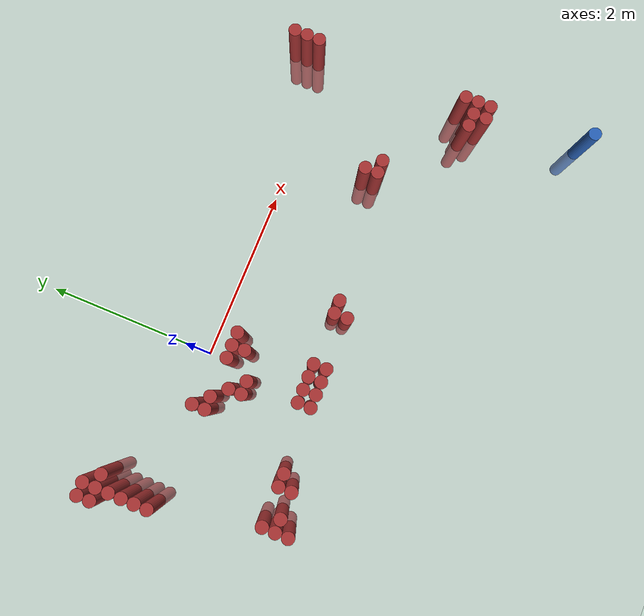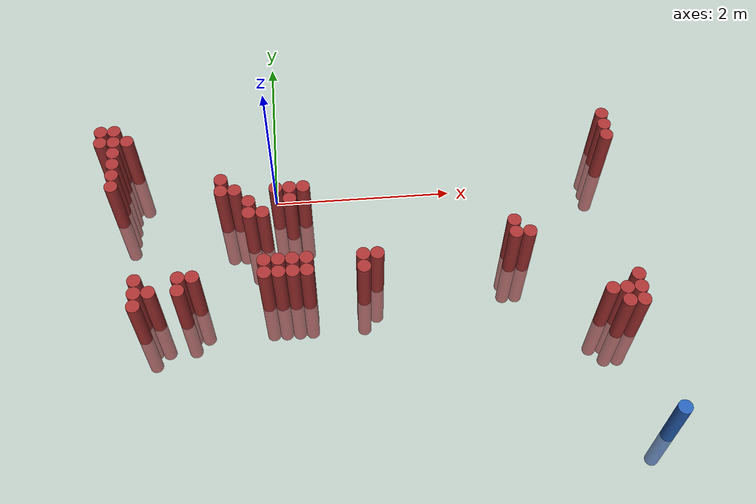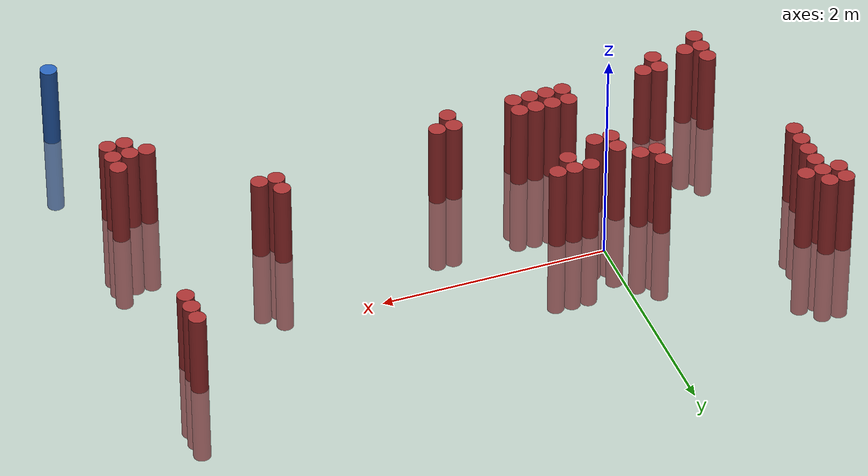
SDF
<sdf version="1.6">
 <world name="default">
  <model name="ground_plane">
   <static>1</static>
   <link name="link">
    <collision name="collision">
     <geometry><plane><normal>0 0 1</normal><size>100 100</size></plane></geometry>
     <surface><friction><ode><mu>100</mu><mu2>50</mu2></ode></friction></surface>
    </collision>
    <visual name="visual">
     <cast_shadows>0</cast_shadows>
     <geometry><plane><normal>0 0 1</normal><size>100 100</size></plane></geometry>
     <material>
      <script><uri>file://media/materials/scripts/gazebo.material</uri><name>Gazebo/Grey</name></script>
     </material>
    </visual>
   </link>
  </model>
  <model name="unit_cylinder_72">
   <static>1</static>
   <pose>3.925000 -3.125000 0.000000 0.000000 0.000000 0.000000</pose>
   <link name="link">
    <inertial>
     <mass>1</mass>
     <inertia><ixx>0.145833</ixx><ixy>0</ixy><ixz>0</ixz><iyy>0.145833</iyy><iyz>0</iyz><izz>0.125</izz></inertia>
    </inertial>
    <collision name="collision">
     <geometry><cylinder><radius>0.075000</radius><length>1.5</length></cylinder></geometry>
    </collision>
    <visual name="visual">
     <geometry><cylinder><radius>0.075000</radius><length>1.5</length></cylinder></geometry>
     <material>
      <ambient>0.152000 0.379000 0.720000 1</ambient>
      <diffuse>0.152000 0.379000 0.720000 1</diffuse>
     </material>
     <material>
      <script><name>Gazebo/Grey</name><uri>file://media/materials/scripts/gazebo.material</uri></script>
     </material>
    </visual>
   </link>
  </model>
  <model name="unit_cylinder_318">
   <static>1</static>
   <pose>-1.925000 0.475000 0.000000 0.000000 0.000000 0.000000</pose>
   <link name="link">
    <inertial>
     <mass>1</mass>
     <inertia><ixx>0.145833</ixx><ixy>0</ixy><ixz>0</ixz><iyy>0.145833</iyy><iyz>0</iyz><izz>0.125</izz></inertia>
    </inertial>
    <collision name="collision">
     <geometry><cylinder><radius>0.075000</radius><length>1.5</length></cylinder></geometry>
    </collision>
    <visual name="visual">
     <geometry><cylinder><radius>0.075000</radius><length>1.5</length></cylinder></geometry>
     <material>
      <ambient>0.648000 0.192000 0.192000 1</ambient>
      <diffuse>0.648000 0.192000 0.192000 1</diffuse>
     </material>
     <material>
      <script><name>Gazebo/Grey</name><uri>file://media/materials/scripts/gazebo.material</uri></script>
     </material>
    </visual>
   </link>
  </model>
  <model name="unit_cylinder_319">
   <static>1</static>
   <pose>-1.925000 0.625000 0.000000 0.000000 0.000000 0.000000</pose>
   <link name="link">
    <inertial>
     <mass>1</mass>
     <inertia><ixx>0.145833</ixx><ixy>0</ixy><ixz>0</ixz><iyy>0.145833</iyy><iyz>0</iyz><izz>0.125</izz></inertia>
    </inertial>
    <collision name="collision">
     <geometry><cylinder><radius>0.075000</radius><length>1.5</length></cylinder></geometry>
    </collision>
    <visual name="visual">
     <geometry><cylinder><radius>0.075000</radius><length>1.5</length></cylinder></geometry>
     <material>
      <ambient>0.648000 0.192000 0.192000 1</ambient>
      <diffuse>0.648000 0.192000 0.192000 1</diffuse>
     </material>
     <material>
      <script><name>Gazebo/Grey</name><uri>file://media/materials/scripts/gazebo.material</uri></script>
     </material>
    </visual>
   </link>
  </model>
  <model name="unit_cylinder_328">
   <static>1</static>
   <pose>-1.775000 -0.125000 0.000000 0.000000 0.000000 0.000000</pose>
   <link name="link">
    <inertial>
     <mass>1</mass>
     <inertia><ixx>0.145833</ixx><ixy>0</ixy><ixz>0</ixz><iyy>0.145833</iyy><iyz>0</iyz><izz>0.125</izz></inertia>
    </inertial>
    <collision name="collision">
     <geometry><cylinder><radius>0.075000</radius><length>1.5</length></cylinder></geometry>
    </collision>
    <visual name="visual">
     <geometry><cylinder><radius>0.075000</radius><length>1.5</length></cylinder></geometry>
     <material>
      <ambient>0.648000 0.192000 0.192000 1</ambient>
      <diffuse>0.648000 0.192000 0.192000 1</diffuse>
     </material>
     <material>
      <script><name>Gazebo/Grey</name><uri>file://media/materials/scripts/gazebo.material</uri></script>
     </material>
    </visual>
   </link>
  </model>
  <model name="unit_cylinder_329">
   <static>1</static>
   <pose>-1.775000 0.025000 0.000000 0.000000 0.000000 0.000000</pose>
   <link name="link">
    <inertial>
     <mass>1</mass>
     <inertia><ixx>0.145833</ixx><ixy>0</ixy><ixz>0</ixz><iyy>0.145833</iyy><iyz>0</iyz><izz>0.125</izz></inertia>
    </inertial>
    <collision name="collision">
     <geometry><cylinder><radius>0.075000</radius><length>1.5</length></cylinder></geometry>
    </collision>
    <visual name="visual">
     <geometry><cylinder><radius>0.075000</radius><length>1.5</length></cylinder></geometry>
     <material>
      <ambient>0.648000 0.192000 0.192000 1</ambient>
      <diffuse>0.648000 0.192000 0.192000 1</diffuse>
     </material>
     <material>
      <script><name>Gazebo/Grey</name><uri>file://media/materials/scripts/gazebo.material</uri></script>
     </material>
    </visual>
   </link>
  </model>
  <model name="unit_cylinder_330">
   <static>1</static>
   <pose>-1.775000 0.175000 0.000000 0.000000 0.000000 0.000000</pose>
   <link name="link">
    <inertial>
     <mass>1</mass>
     <inertia><ixx>0.145833</ixx><ixy>0</ixy><ixz>0</ixz><iyy>0.145833</iyy><iyz>0</iyz><izz>0.125</izz></inertia>
    </inertial>
    <collision name="collision">
     <geometry><cylinder><radius>0.075000</radius><length>1.5</length></cylinder></geometry>
    </collision>
    <visual name="visual">
     <geometry><cylinder><radius>0.075000</radius><length>1.5</length></cylinder></geometry>
     <material>
      <ambient>0.648000 0.192000 0.192000 1</ambient>
      <diffuse>0.648000 0.192000 0.192000 1</diffuse>
     </material>
     <material>
      <script><name>Gazebo/Grey</name><uri>file://media/materials/scripts/gazebo.material</uri></script>
     </material>
    </visual>
   </link>
  </model>
  <model name="unit_cylinder_331">
   <static>1</static>
   <pose>-1.775000 0.325000 0.000000 0.000000 0.000000 0.000000</pose>
   <link name="link">
    <inertial>
     <mass>1</mass>
     <inertia><ixx>0.145833</ixx><ixy>0</ixy><ixz>0</ixz><iyy>0.145833</iyy><iyz>0</iyz><izz>0.125</izz></inertia>
    </inertial>
    <collision name="collision">
     <geometry><cylinder><radius>0.075000</radius><length>1.5</length></cylinder></geometry>
    </collision>
    <visual name="visual">
     <geometry><cylinder><radius>0.075000</radius><length>1.5</length></cylinder></geometry>
     <material>
      <ambient>0.648000 0.192000 0.192000 1</ambient>
      <diffuse>0.648000 0.192000 0.192000 1</diffuse>
     </material>
     <material>
      <script><name>Gazebo/Grey</name><uri>file://media/materials/scripts/gazebo.material</uri></script>
     </material>
    </visual>
   </link>
  </model>
  <model name="unit_cylinder_332">
   <static>1</static>
   <pose>-1.775000 0.475000 0.000000 0.000000 0.000000 0.000000</pose>
   <link name="link">
    <inertial>
     <mass>1</mass>
     <inertia><ixx>0.145833</ixx><ixy>0</ixy><ixz>0</ixz><iyy>0.145833</iyy><iyz>0</iyz><izz>0.125</izz></inertia>
    </inertial>
    <collision name="collision">
     <geometry><cylinder><radius>0.075000</radius><length>1.5</length></cylinder></geometry>
    </collision>
    <visual name="visual">
     <geometry><cylinder><radius>0.075000</radius><length>1.5</length></cylinder></geometry>
     <material>
      <ambient>0.648000 0.192000 0.192000 1</ambient>
      <diffuse>0.648000 0.192000 0.192000 1</diffuse>
     </material>
     <material>
      <script><name>Gazebo/Grey</name><uri>file://media/materials/scripts/gazebo.material</uri></script>
     </material>
    </visual>
   </link>
  </model>
  <model name="unit_cylinder_333">
   <static>1</static>
   <pose>-1.775000 0.625000 0.000000 0.000000 0.000000 0.000000</pose>
   <link name="link">
    <inertial>
     <mass>1</mass>
     <inertia><ixx>0.145833</ixx><ixy>0</ixy><ixz>0</ixz><iyy>0.145833</iyy><iyz>0</iyz><izz>0.125</izz></inertia>
    </inertial>
    <collision name="collision">
     <geometry><cylinder><radius>0.075000</radius><length>1.5</length></cylinder></geometry>
    </collision>
    <visual name="visual">
     <geometry><cylinder><radius>0.075000</radius><length>1.5</length></cylinder></geometry>
     <material>
      <ambient>0.648000 0.192000 0.192000 1</ambient>
      <diffuse>0.648000 0.192000 0.192000 1</diffuse>
     </material>
     <material>
      <script><name>Gazebo/Grey</name><uri>file://media/materials/scripts/gazebo.material</uri></script>
     </material>
    </visual>
   </link>
  </model>
  <model name="unit_cylinder_340">
   <static>1</static>
   <pose>-1.625000 0.475000 0.000000 0.000000 0.000000 0.000000</pose>
   <link name="link">
    <inertial>
     <mass>1</mass>
     <inertia><ixx>0.145833</ixx><ixy>0</ixy><ixz>0</ixz><iyy>0.145833</iyy><iyz>0</iyz><izz>0.125</izz></inertia>
    </inertial>
    <collision name="collision">
     <geometry><cylinder><radius>0.075000</radius><length>1.5</length></cylinder></geometry>
    </collision>
    <visual name="visual">
     <geometry><cylinder><radius>0.075000</radius><length>1.5</length></cylinder></geometry>
     <material>
      <ambient>0.648000 0.192000 0.192000 1</ambient>
      <diffuse>0.648000 0.192000 0.192000 1</diffuse>
     </material>
     <material>
      <script><name>Gazebo/Grey</name><uri>file://media/materials/scripts/gazebo.material</uri></script>
     </material>
    </visual>
   </link>
  </model>
  <model name="unit_cylinder_346">
   <static>1</static>
   <pose>-1.475000 -1.625000 0.000000 0.000000 0.000000 0.000000</pose>
   <link name="link">
    <inertial>
     <mass>1</mass>
     <inertia><ixx>0.145833</ixx><ixy>0</ixy><ixz>0</ixz><iyy>0.145833</iyy><iyz>0</iyz><izz>0.125</izz></inertia>
    </inertial>
    <collision name="collision">
     <geometry><cylinder><radius>0.075000</radius><length>1.5</length></cylinder></geometry>
    </collision>
    <visual name="visual">
     <geometry><cylinder><radius>0.075000</radius><length>1.5</length></cylinder></geometry>
     <material>
      <ambient>0.648000 0.192000 0.192000 1</ambient>
      <diffuse>0.648000 0.192000 0.192000 1</diffuse>
     </material>
     <material>
      <script><name>Gazebo/Grey</name><uri>file://media/materials/scripts/gazebo.material</uri></script>
     </material>
    </visual>
   </link>
  </model>
  <model name="unit_cylinder_347">
   <static>1</static>
   <pose>-1.475000 -1.475000 0.000000 0.000000 0.000000 0.000000</pose>
   <link name="link">
    <inertial>
     <mass>1</mass>
     <inertia><ixx>0.145833</ixx><ixy>0</ixy><ixz>0</ixz><iyy>0.145833</iyy><iyz>0</iyz><izz>0.125</izz></inertia>
    </inertial>
    <collision name="collision">
     <geometry><cylinder><radius>0.075000</radius><length>1.5</length></cylinder></geometry>
    </collision>
    <visual name="visual">
     <geometry><cylinder><radius>0.075000</radius><length>1.5</length></cylinder></geometry>
     <material>
      <ambient>0.648000 0.192000 0.192000 1</ambient>
      <diffuse>0.648000 0.192000 0.192000 1</diffuse>
     </material>
     <material>
      <script><name>Gazebo/Grey</name><uri>file://media/materials/scripts/gazebo.material</uri></script>
     </material>
    </visual>
   </link>
  </model>
  <model name="unit_cylinder_348">
   <static>1</static>
   <pose>-1.475000 -1.325000 0.000000 0.000000 0.000000 0.000000</pose>
   <link name="link">
    <inertial>
     <mass>1</mass>
     <inertia><ixx>0.145833</ixx><ixy>0</ixy><ixz>0</ixz><iyy>0.145833</iyy><iyz>0</iyz><izz>0.125</izz></inertia>
    </inertial>
    <collision name="collision">
     <geometry><cylinder><radius>0.075000</radius><length>1.5</length></cylinder></geometry>
    </collision>
    <visual name="visual">
     <geometry><cylinder><radius>0.075000</radius><length>1.5</length></cylinder></geometry>
     <material>
      <ambient>0.648000 0.192000 0.192000 1</ambient>
      <diffuse>0.648000 0.192000 0.192000 1</diffuse>
     </material>
     <material>
      <script><name>Gazebo/Grey</name><uri>file://media/materials/scripts/gazebo.material</uri></script>
     </material>
    </visual>
   </link>
  </model>
  <model name="unit_cylinder_354">
   <static>1</static>
   <pose>-1.325000 -1.475000 0.000000 0.000000 0.000000 0.000000</pose>
   <link name="link">
    <inertial>
     <mass>1</mass>
     <inertia><ixx>0.145833</ixx><ixy>0</ixy><ixz>0</ixz><iyy>0.145833</iyy><iyz>0</iyz><izz>0.125</izz></inertia>
    </inertial>
    <collision name="collision">
     <geometry><cylinder><radius>0.075000</radius><length>1.5</length></cylinder></geometry>
    </collision>
    <visual name="visual">
     <geometry><cylinder><radius>0.075000</radius><length>1.5</length></cylinder></geometry>
     <material>
      <ambient>0.648000 0.192000 0.192000 1</ambient>
      <diffuse>0.648000 0.192000 0.192000 1</diffuse>
     </material>
     <material>
      <script><name>Gazebo/Grey</name><uri>file://media/materials/scripts/gazebo.material</uri></script>
     </material>
    </visual>
   </link>
  </model>
  <model name="unit_cylinder_358">
   <static>1</static>
   <pose>-1.025000 -1.475000 0.000000 0.000000 0.000000 0.000000</pose>
   <link name="link">
    <inertial>
     <mass>1</mass>
     <inertia><ixx>0.145833</ixx><ixy>0</ixy><ixz>0</ixz><iyy>0.145833</iyy><iyz>0</iyz><izz>0.125</izz></inertia>
    </inertial>
    <collision name="collision">
     <geometry><cylinder><radius>0.075000</radius><length>1.5</length></cylinder></geometry>
    </collision>
    <visual name="visual">
     <geometry><cylinder><radius>0.075000</radius><length>1.5</length></cylinder></geometry>
     <material>
      <ambient>0.648000 0.192000 0.192000 1</ambient>
      <diffuse>0.648000 0.192000 0.192000 1</diffuse>
     </material>
     <material>
      <script><name>Gazebo/Grey</name><uri>file://media/materials/scripts/gazebo.material</uri></script>
     </material>
    </visual>
   </link>
  </model>
  <model name="unit_cylinder_359">
   <static>1</static>
   <pose>-1.025000 -1.325000 0.000000 0.000000 0.000000 0.000000</pose>
   <link name="link">
    <inertial>
     <mass>1</mass>
     <inertia><ixx>0.145833</ixx><ixy>0</ixy><ixz>0</ixz><iyy>0.145833</iyy><iyz>0</iyz><izz>0.125</izz></inertia>
    </inertial>
    <collision name="collision">
     <geometry><cylinder><radius>0.075000</radius><length>1.5</length></cylinder></geometry>
    </collision>
    <visual name="visual">
     <geometry><cylinder><radius>0.075000</radius><length>1.5</length></cylinder></geometry>
     <material>
      <ambient>0.648000 0.192000 0.192000 1</ambient>
      <diffuse>0.648000 0.192000 0.192000 1</diffuse>
     </material>
     <material>
      <script><name>Gazebo/Grey</name><uri>file://media/materials/scripts/gazebo.material</uri></script>
     </material>
    </visual>
   </link>
  </model>
  <model name="unit_cylinder_360">
   <static>1</static>
   <pose>-0.875000 -1.325000 0.000000 0.000000 0.000000 0.000000</pose>
   <link name="link">
    <inertial>
     <mass>1</mass>
     <inertia><ixx>0.145833</ixx><ixy>0</ixy><ixz>0</ixz><iyy>0.145833</iyy><iyz>0</iyz><izz>0.125</izz></inertia>
    </inertial>
    <collision name="collision">
     <geometry><cylinder><radius>0.075000</radius><length>1.5</length></cylinder></geometry>
    </collision>
    <visual name="visual">
     <geometry><cylinder><radius>0.075000</radius><length>1.5</length></cylinder></geometry>
     <material>
      <ambient>0.648000 0.192000 0.192000 1</ambient>
      <diffuse>0.648000 0.192000 0.192000 1</diffuse>
     </material>
     <material>
      <script><name>Gazebo/Grey</name><uri>file://media/materials/scripts/gazebo.material</uri></script>
     </material>
    </visual>
   </link>
  </model>
  <model name="unit_cylinder_361">
   <static>1</static>
   <pose>-0.575000 -0.275000 0.000000 0.000000 0.000000 0.000000</pose>
   <link name="link">
    <inertial>
     <mass>1</mass>
     <inertia><ixx>0.145833</ixx><ixy>0</ixy><ixz>0</ixz><iyy>0.145833</iyy><iyz>0</iyz><izz>0.125</izz></inertia>
    </inertial>
    <collision name="collision">
     <geometry><cylinder><radius>0.075000</radius><length>1.5</length></cylinder></geometry>
    </collision>
    <visual name="visual">
     <geometry><cylinder><radius>0.075000</radius><length>1.5</length></cylinder></geometry>
     <material>
      <ambient>0.648000 0.192000 0.192000 1</ambient>
      <diffuse>0.648000 0.192000 0.192000 1</diffuse>
     </material>
     <material>
      <script><name>Gazebo/Grey</name><uri>file://media/materials/scripts/gazebo.material</uri></script>
     </material>
    </visual>
   </link>
  </model>
  <model name="unit_cylinder_362">
   <static>1</static>
   <pose>-0.575000 -0.125000 0.000000 0.000000 0.000000 0.000000</pose>
   <link name="link">
    <inertial>
     <mass>1</mass>
     <inertia><ixx>0.145833</ixx><ixy>0</ixy><ixz>0</ixz><iyy>0.145833</iyy><iyz>0</iyz><izz>0.125</izz></inertia>
    </inertial>
    <collision name="collision">
     <geometry><cylinder><radius>0.075000</radius><length>1.5</length></cylinder></geometry>
    </collision>
    <visual name="visual">
     <geometry><cylinder><radius>0.075000</radius><length>1.5</length></cylinder></geometry>
     <material>
      <ambient>0.648000 0.192000 0.192000 1</ambient>
      <diffuse>0.648000 0.192000 0.192000 1</diffuse>
     </material>
     <material>
      <script><name>Gazebo/Grey</name><uri>file://media/materials/scripts/gazebo.material</uri></script>
     </material>
    </visual>
   </link>
  </model>
  <model name="unit_cylinder_363">
   <static>1</static>
   <pose>-0.425000 -0.275000 0.000000 0.000000 0.000000 0.000000</pose>
   <link name="link">
    <inertial>
     <mass>1</mass>
     <inertia><ixx>0.145833</ixx><ixy>0</ixy><ixz>0</ixz><iyy>0.145833</iyy><iyz>0</iyz><izz>0.125</izz></inertia>
    </inertial>
    <collision name="collision">
     <geometry><cylinder><radius>0.075000</radius><length>1.5</length></cylinder></geometry>
    </collision>
    <visual name="visual">
     <geometry><cylinder><radius>0.075000</radius><length>1.5</length></cylinder></geometry>
     <material>
      <ambient>0.648000 0.192000 0.192000 1</ambient>
      <diffuse>0.648000 0.192000 0.192000 1</diffuse>
     </material>
     <material>
      <script><name>Gazebo/Grey</name><uri>file://media/materials/scripts/gazebo.material</uri></script>
     </material>
    </visual>
   </link>
  </model>
  <model name="unit_cylinder_364">
   <static>1</static>
   <pose>-0.275000 -0.575000 0.000000 0.000000 0.000000 0.000000</pose>
   <link name="link">
    <inertial>
     <mass>1</mass>
     <inertia><ixx>0.145833</ixx><ixy>0</ixy><ixz>0</ixz><iyy>0.145833</iyy><iyz>0</iyz><izz>0.125</izz></inertia>
    </inertial>
    <collision name="collision">
     <geometry><cylinder><radius>0.075000</radius><length>1.5</length></cylinder></geometry>
    </collision>
    <visual name="visual">
     <geometry><cylinder><radius>0.075000</radius><length>1.5</length></cylinder></geometry>
     <material>
      <ambient>0.648000 0.192000 0.192000 1</ambient>
      <diffuse>0.648000 0.192000 0.192000 1</diffuse>
     </material>
     <material>
      <script><name>Gazebo/Grey</name><uri>file://media/materials/scripts/gazebo.material</uri></script>
     </material>
    </visual>
   </link>
  </model>
  <model name="unit_cylinder_365">
   <static>1</static>
   <pose>-0.275000 -0.425000 0.000000 0.000000 0.000000 0.000000</pose>
   <link name="link">
    <inertial>
     <mass>1</mass>
     <inertia><ixx>0.145833</ixx><ixy>0</ixy><ixz>0</ixz><iyy>0.145833</iyy><iyz>0</iyz><izz>0.125</izz></inertia>
    </inertial>
    <collision name="collision">
     <geometry><cylinder><radius>0.075000</radius><length>1.5</length></cylinder></geometry>
    </collision>
    <visual name="visual">
     <geometry><cylinder><radius>0.075000</radius><length>1.5</length></cylinder></geometry>
     <material>
      <ambient>0.648000 0.192000 0.192000 1</ambient>
      <diffuse>0.648000 0.192000 0.192000 1</diffuse>
     </material>
     <material>
      <script><name>Gazebo/Grey</name><uri>file://media/materials/scripts/gazebo.material</uri></script>
     </material>
    </visual>
   </link>
  </model>
  <model name="unit_cylinder_367">
   <static>1</static>
   <pose>-0.125000 -1.325000 0.000000 0.000000 0.000000 0.000000</pose>
   <link name="link">
    <inertial>
     <mass>1</mass>
     <inertia><ixx>0.145833</ixx><ixy>0</ixy><ixz>0</ixz><iyy>0.145833</iyy><iyz>0</iyz><izz>0.125</izz></inertia>
    </inertial>
    <collision name="collision">
     <geometry><cylinder><radius>0.075000</radius><length>1.5</length></cylinder></geometry>
    </collision>
    <visual name="visual">
     <geometry><cylinder><radius>0.075000</radius><length>1.5</length></cylinder></geometry>
     <material>
      <ambient>0.648000 0.192000 0.192000 1</ambient>
      <diffuse>0.648000 0.192000 0.192000 1</diffuse>
     </material>
     <material>
      <script><name>Gazebo/Grey</name><uri>file://media/materials/scripts/gazebo.material</uri></script>
     </material>
    </visual>
   </link>
  </model>
  <model name="unit_cylinder_368">
   <static>1</static>
   <pose>-0.125000 -1.175000 0.000000 0.000000 0.000000 0.000000</pose>
   <link name="link">
    <inertial>
     <mass>1</mass>
     <inertia><ixx>0.145833</ixx><ixy>0</ixy><ixz>0</ixz><iyy>0.145833</iyy><iyz>0</iyz><izz>0.125</izz></inertia>
    </inertial>
    <collision name="collision">
     <geometry><cylinder><radius>0.075000</radius><length>1.5</length></cylinder></geometry>
    </collision>
    <visual name="visual">
     <geometry><cylinder><radius>0.075000</radius><length>1.5</length></cylinder></geometry>
     <material>
      <ambient>0.648000 0.192000 0.192000 1</ambient>
      <diffuse>0.648000 0.192000 0.192000 1</diffuse>
     </material>
     <material>
      <script><name>Gazebo/Grey</name><uri>file://media/materials/scripts/gazebo.material</uri></script>
     </material>
    </visual>
   </link>
  </model>
  <model name="unit_cylinder_369">
   <static>1</static>
   <pose>-0.125000 -0.575000 0.000000 0.000000 0.000000 0.000000</pose>
   <link name="link">
    <inertial>
     <mass>1</mass>
     <inertia><ixx>0.145833</ixx><ixy>0</ixy><ixz>0</ixz><iyy>0.145833</iyy><iyz>0</iyz><izz>0.125</izz></inertia>
    </inertial>
    <collision name="collision">
     <geometry><cylinder><radius>0.075000</radius><length>1.5</length></cylinder></geometry>
    </collision>
    <visual name="visual">
     <geometry><cylinder><radius>0.075000</radius><length>1.5</length></cylinder></geometry>
     <material>
      <ambient>0.648000 0.192000 0.192000 1</ambient>
      <diffuse>0.648000 0.192000 0.192000 1</diffuse>
     </material>
     <material>
      <script><name>Gazebo/Grey</name><uri>file://media/materials/scripts/gazebo.material</uri></script>
     </material>
    </visual>
   </link>
  </model>
  <model name="unit_cylinder_372">
   <static>1</static>
   <pose>0.025000 -1.325000 0.000000 0.000000 0.000000 0.000000</pose>
   <link name="link">
    <inertial>
     <mass>1</mass>
     <inertia><ixx>0.145833</ixx><ixy>0</ixy><ixz>0</ixz><iyy>0.145833</iyy><iyz>0</iyz><izz>0.125</izz></inertia>
    </inertial>
    <collision name="collision">
     <geometry><cylinder><radius>0.075000</radius><length>1.5</length></cylinder></geometry>
    </collision>
    <visual name="visual">
     <geometry><cylinder><radius>0.075000</radius><length>1.5</length></cylinder></geometry>
     <material>
      <ambient>0.648000 0.192000 0.192000 1</ambient>
      <diffuse>0.648000 0.192000 0.192000 1</diffuse>
     </material>
     <material>
      <script><name>Gazebo/Grey</name><uri>file://media/materials/scripts/gazebo.material</uri></script>
     </material>
    </visual>
   </link>
  </model>
  <model name="unit_cylinder_373">
   <static>1</static>
   <pose>0.025000 -1.175000 0.000000 0.000000 0.000000 0.000000</pose>
   <link name="link">
    <inertial>
     <mass>1</mass>
     <inertia><ixx>0.145833</ixx><ixy>0</ixy><ixz>0</ixz><iyy>0.145833</iyy><iyz>0</iyz><izz>0.125</izz></inertia>
    </inertial>
    <collision name="collision">
     <geometry><cylinder><radius>0.075000</radius><length>1.5</length></cylinder></geometry>
    </collision>
    <visual name="visual">
     <geometry><cylinder><radius>0.075000</radius><length>1.5</length></cylinder></geometry>
     <material>
      <ambient>0.648000 0.192000 0.192000 1</ambient>
      <diffuse>0.648000 0.192000 0.192000 1</diffuse>
     </material>
     <material>
      <script><name>Gazebo/Grey</name><uri>file://media/materials/scripts/gazebo.material</uri></script>
     </material>
    </visual>
   </link>
  </model>
  <model name="unit_cylinder_374">
   <static>1</static>
   <pose>0.025000 -0.275000 0.000000 0.000000 0.000000 0.000000</pose>
   <link name="link">
    <inertial>
     <mass>1</mass>
     <inertia><ixx>0.145833</ixx><ixy>0</ixy><ixz>0</ixz><iyy>0.145833</iyy><iyz>0</iyz><izz>0.125</izz></inertia>
    </inertial>
    <collision name="collision">
     <geometry><cylinder><radius>0.075000</radius><length>1.5</length></cylinder></geometry>
    </collision>
    <visual name="visual">
     <geometry><cylinder><radius>0.075000</radius><length>1.5</length></cylinder></geometry>
     <material>
      <ambient>0.648000 0.192000 0.192000 1</ambient>
      <diffuse>0.648000 0.192000 0.192000 1</diffuse>
     </material>
     <material>
      <script><name>Gazebo/Grey</name><uri>file://media/materials/scripts/gazebo.material</uri></script>
     </material>
    </visual>
   </link>
  </model>
  <model name="unit_cylinder_376">
   <static>1</static>
   <pose>0.175000 -1.325000 0.000000 0.000000 0.000000 0.000000</pose>
   <link name="link">
    <inertial>
     <mass>1</mass>
     <inertia><ixx>0.145833</ixx><ixy>0</ixy><ixz>0</ixz><iyy>0.145833</iyy><iyz>0</iyz><izz>0.125</izz></inertia>
    </inertial>
    <collision name="collision">
     <geometry><cylinder><radius>0.075000</radius><length>1.5</length></cylinder></geometry>
    </collision>
    <visual name="visual">
     <geometry><cylinder><radius>0.075000</radius><length>1.5</length></cylinder></geometry>
     <material>
      <ambient>0.648000 0.192000 0.192000 1</ambient>
      <diffuse>0.648000 0.192000 0.192000 1</diffuse>
     </material>
     <material>
      <script><name>Gazebo/Grey</name><uri>file://media/materials/scripts/gazebo.material</uri></script>
     </material>
    </visual>
   </link>
  </model>
  <model name="unit_cylinder_377">
   <static>1</static>
   <pose>0.175000 -1.175000 0.000000 0.000000 0.000000 0.000000</pose>
   <link name="link">
    <inertial>
     <mass>1</mass>
     <inertia><ixx>0.145833</ixx><ixy>0</ixy><ixz>0</ixz><iyy>0.145833</iyy><iyz>0</iyz><izz>0.125</izz></inertia>
    </inertial>
    <collision name="collision">
     <geometry><cylinder><radius>0.075000</radius><length>1.5</length></cylinder></geometry>
    </collision>
    <visual name="visual">
     <geometry><cylinder><radius>0.075000</radius><length>1.5</length></cylinder></geometry>
     <material>
      <ambient>0.648000 0.192000 0.192000 1</ambient>
      <diffuse>0.648000 0.192000 0.192000 1</diffuse>
     </material>
     <material>
      <script><name>Gazebo/Grey</name><uri>file://media/materials/scripts/gazebo.material</uri></script>
     </material>
    </visual>
   </link>
  </model>
  <model name="unit_cylinder_378">
   <static>1</static>
   <pose>0.175000 -0.425000 0.000000 0.000000 0.000000 0.000000</pose>
   <link name="link">
    <inertial>
     <mass>1</mass>
     <inertia><ixx>0.145833</ixx><ixy>0</ixy><ixz>0</ixz><iyy>0.145833</iyy><iyz>0</iyz><izz>0.125</izz></inertia>
    </inertial>
    <collision name="collision">
     <geometry><cylinder><radius>0.075000</radius><length>1.5</length></cylinder></geometry>
    </collision>
    <visual name="visual">
     <geometry><cylinder><radius>0.075000</radius><length>1.5</length></cylinder></geometry>
     <material>
      <ambient>0.648000 0.192000 0.192000 1</ambient>
      <diffuse>0.648000 0.192000 0.192000 1</diffuse>
     </material>
     <material>
      <script><name>Gazebo/Grey</name><uri>file://media/materials/scripts/gazebo.material</uri></script>
     </material>
    </visual>
   </link>
  </model>
  <model name="unit_cylinder_379">
   <static>1</static>
   <pose>0.175000 -0.275000 0.000000 0.000000 0.000000 0.000000</pose>
   <link name="link">
    <inertial>
     <mass>1</mass>
     <inertia><ixx>0.145833</ixx><ixy>0</ixy><ixz>0</ixz><iyy>0.145833</iyy><iyz>0</iyz><izz>0.125</izz></inertia>
    </inertial>
    <collision name="collision">
     <geometry><cylinder><radius>0.075000</radius><length>1.5</length></cylinder></geometry>
    </collision>
    <visual name="visual">
     <geometry><cylinder><radius>0.075000</radius><length>1.5</length></cylinder></geometry>
     <material>
      <ambient>0.648000 0.192000 0.192000 1</ambient>
      <diffuse>0.648000 0.192000 0.192000 1</diffuse>
     </material>
     <material>
      <script><name>Gazebo/Grey</name><uri>file://media/materials/scripts/gazebo.material</uri></script>
     </material>
    </visual>
   </link>
  </model>
  <model name="unit_cylinder_380">
   <static>1</static>
   <pose>0.325000 -1.325000 0.000000 0.000000 0.000000 0.000000</pose>
   <link name="link">
    <inertial>
     <mass>1</mass>
     <inertia><ixx>0.145833</ixx><ixy>0</ixy><ixz>0</ixz><iyy>0.145833</iyy><iyz>0</iyz><izz>0.125</izz></inertia>
    </inertial>
    <collision name="collision">
     <geometry><cylinder><radius>0.075000</radius><length>1.5</length></cylinder></geometry>
    </collision>
    <visual name="visual">
     <geometry><cylinder><radius>0.075000</radius><length>1.5</length></cylinder></geometry>
     <material>
      <ambient>0.648000 0.192000 0.192000 1</ambient>
      <diffuse>0.648000 0.192000 0.192000 1</diffuse>
     </material>
     <material>
      <script><name>Gazebo/Grey</name><uri>file://media/materials/scripts/gazebo.material</uri></script>
     </material>
    </visual>
   </link>
  </model>
  <model name="unit_cylinder_381">
   <static>1</static>
   <pose>0.325000 -1.175000 0.000000 0.000000 0.000000 0.000000</pose>
   <link name="link">
    <inertial>
     <mass>1</mass>
     <inertia><ixx>0.145833</ixx><ixy>0</ixy><ixz>0</ixz><iyy>0.145833</iyy><iyz>0</iyz><izz>0.125</izz></inertia>
    </inertial>
    <collision name="collision">
     <geometry><cylinder><radius>0.075000</radius><length>1.5</length></cylinder></geometry>
    </collision>
    <visual name="visual">
     <geometry><cylinder><radius>0.075000</radius><length>1.5</length></cylinder></geometry>
     <material>
      <ambient>0.648000 0.192000 0.192000 1</ambient>
      <diffuse>0.648000 0.192000 0.192000 1</diffuse>
     </material>
     <material>
      <script><name>Gazebo/Grey</name><uri>file://media/materials/scripts/gazebo.material</uri></script>
     </material>
    </visual>
   </link>
  </model>
  <model name="unit_cylinder_382">
   <static>1</static>
   <pose>0.325000 -0.275000 0.000000 0.000000 0.000000 0.000000</pose>
   <link name="link">
    <inertial>
     <mass>1</mass>
     <inertia><ixx>0.145833</ixx><ixy>0</ixy><ixz>0</ixz><iyy>0.145833</iyy><iyz>0</iyz><izz>0.125</izz></inertia>
    </inertial>
    <collision name="collision">
     <geometry><cylinder><radius>0.075000</radius><length>1.5</length></cylinder></geometry>
    </collision>
    <visual name="visual">
     <geometry><cylinder><radius>0.075000</radius><length>1.5</length></cylinder></geometry>
     <material>
      <ambient>0.648000 0.192000 0.192000 1</ambient>
      <diffuse>0.648000 0.192000 0.192000 1</diffuse>
     </material>
     <material>
      <script><name>Gazebo/Grey</name><uri>file://media/materials/scripts/gazebo.material</uri></script>
     </material>
    </visual>
   </link>
  </model>
  <model name="unit_cylinder_390">
   <static>1</static>
   <pose>0.925000 -1.325000 0.000000 0.000000 0.000000 0.000000</pose>
   <link name="link">
    <inertial>
     <mass>1</mass>
     <inertia><ixx>0.145833</ixx><ixy>0</ixy><ixz>0</ixz><iyy>0.145833</iyy><iyz>0</iyz><izz>0.125</izz></inertia>
    </inertial>
    <collision name="collision">
     <geometry><cylinder><radius>0.075000</radius><length>1.5</length></cylinder></geometry>
    </collision>
    <visual name="visual">
     <geometry><cylinder><radius>0.075000</radius><length>1.5</length></cylinder></geometry>
     <material>
      <ambient>0.648000 0.192000 0.192000 1</ambient>
      <diffuse>0.648000 0.192000 0.192000 1</diffuse>
     </material>
     <material>
      <script><name>Gazebo/Grey</name><uri>file://media/materials/scripts/gazebo.material</uri></script>
     </material>
    </visual>
   </link>
  </model>
  <model name="unit_cylinder_391">
   <static>1</static>
   <pose>0.925000 -1.175000 0.000000 0.000000 0.000000 0.000000</pose>
   <link name="link">
    <inertial>
     <mass>1</mass>
     <inertia><ixx>0.145833</ixx><ixy>0</ixy><ixz>0</ixz><iyy>0.145833</iyy><iyz>0</iyz><izz>0.125</izz></inertia>
    </inertial>
    <collision name="collision">
     <geometry><cylinder><radius>0.075000</radius><length>1.5</length></cylinder></geometry>
    </collision>
    <visual name="visual">
     <geometry><cylinder><radius>0.075000</radius><length>1.5</length></cylinder></geometry>
     <material>
      <ambient>0.648000 0.192000 0.192000 1</ambient>
      <diffuse>0.648000 0.192000 0.192000 1</diffuse>
     </material>
     <material>
      <script><name>Gazebo/Grey</name><uri>file://media/materials/scripts/gazebo.material</uri></script>
     </material>
    </visual>
   </link>
  </model>
  <model name="unit_cylinder_397">
   <static>1</static>
   <pose>1.075000 -1.175000 0.000000 0.000000 0.000000 0.000000</pose>
   <link name="link">
    <inertial>
     <mass>1</mass>
     <inertia><ixx>0.145833</ixx><ixy>0</ixy><ixz>0</ixz><iyy>0.145833</iyy><iyz>0</iyz><izz>0.125</izz></inertia>
    </inertial>
    <collision name="collision">
     <geometry><cylinder><radius>0.075000</radius><length>1.5</length></cylinder></geometry>
    </collision>
    <visual name="visual">
     <geometry><cylinder><radius>0.075000</radius><length>1.5</length></cylinder></geometry>
     <material>
      <ambient>0.648000 0.192000 0.192000 1</ambient>
      <diffuse>0.648000 0.192000 0.192000 1</diffuse>
     </material>
     <material>
      <script><name>Gazebo/Grey</name><uri>file://media/materials/scripts/gazebo.material</uri></script>
     </material>
    </visual>
   </link>
  </model>
  <model name="unit_cylinder_414">
   <static>1</static>
   <pose>2.575000 -1.025000 0.000000 0.000000 0.000000 0.000000</pose>
   <link name="link">
    <inertial>
     <mass>1</mass>
     <inertia><ixx>0.145833</ixx><ixy>0</ixy><ixz>0</ixz><iyy>0.145833</iyy><iyz>0</iyz><izz>0.125</izz></inertia>
    </inertial>
    <collision name="collision">
     <geometry><cylinder><radius>0.075000</radius><length>1.5</length></cylinder></geometry>
    </collision>
    <visual name="visual">
     <geometry><cylinder><radius>0.075000</radius><length>1.5</length></cylinder></geometry>
     <material>
      <ambient>0.648000 0.192000 0.192000 1</ambient>
      <diffuse>0.648000 0.192000 0.192000 1</diffuse>
     </material>
     <material>
      <script><name>Gazebo/Grey</name><uri>file://media/materials/scripts/gazebo.material</uri></script>
     </material>
    </visual>
   </link>
  </model>
  <model name="unit_cylinder_415">
   <static>1</static>
   <pose>2.575000 -0.875000 0.000000 0.000000 0.000000 0.000000</pose>
   <link name="link">
    <inertial>
     <mass>1</mass>
     <inertia><ixx>0.145833</ixx><ixy>0</ixy><ixz>0</ixz><iyy>0.145833</iyy><iyz>0</iyz><izz>0.125</izz></inertia>
    </inertial>
    <collision name="collision">
     <geometry><cylinder><radius>0.075000</radius><length>1.5</length></cylinder></geometry>
    </collision>
    <visual name="visual">
     <geometry><cylinder><radius>0.075000</radius><length>1.5</length></cylinder></geometry>
     <material>
      <ambient>0.648000 0.192000 0.192000 1</ambient>
      <diffuse>0.648000 0.192000 0.192000 1</diffuse>
     </material>
     <material>
      <script><name>Gazebo/Grey</name><uri>file://media/materials/scripts/gazebo.material</uri></script>
     </material>
    </visual>
   </link>
  </model>
  <model name="unit_cylinder_416">
   <static>1</static>
   <pose>2.725000 -1.025000 0.000000 0.000000 0.000000 0.000000</pose>
   <link name="link">
    <inertial>
     <mass>1</mass>
     <inertia><ixx>0.145833</ixx><ixy>0</ixy><ixz>0</ixz><iyy>0.145833</iyy><iyz>0</iyz><izz>0.125</izz></inertia>
    </inertial>
    <collision name="collision">
     <geometry><cylinder><radius>0.075000</radius><length>1.5</length></cylinder></geometry>
    </collision>
    <visual name="visual">
     <geometry><cylinder><radius>0.075000</radius><length>1.5</length></cylinder></geometry>
     <material>
      <ambient>0.648000 0.192000 0.192000 1</ambient>
      <diffuse>0.648000 0.192000 0.192000 1</diffuse>
     </material>
     <material>
      <script><name>Gazebo/Grey</name><uri>file://media/materials/scripts/gazebo.material</uri></script>
     </material>
    </visual>
   </link>
  </model>
  <model name="unit_cylinder_421">
   <static>1</static>
   <pose>3.475000 -1.775000 0.000000 0.000000 0.000000 0.000000</pose>
   <link name="link">
    <inertial>
     <mass>1</mass>
     <inertia><ixx>0.145833</ixx><ixy>0</ixy><ixz>0</ixz><iyy>0.145833</iyy><iyz>0</iyz><izz>0.125</izz></inertia>
    </inertial>
    <collision name="collision">
     <geometry><cylinder><radius>0.075000</radius><length>1.5</length></cylinder></geometry>
    </collision>
    <visual name="visual">
     <geometry><cylinder><radius>0.075000</radius><length>1.5</length></cylinder></geometry>
     <material>
      <ambient>0.648000 0.192000 0.192000 1</ambient>
      <diffuse>0.648000 0.192000 0.192000 1</diffuse>
     </material>
     <material>
      <script><name>Gazebo/Grey</name><uri>file://media/materials/scripts/gazebo.material</uri></script>
     </material>
    </visual>
   </link>
  </model>
  <model name="unit_cylinder_424">
   <static>1</static>
   <pose>3.625000 -1.925000 0.000000 0.000000 0.000000 0.000000</pose>
   <link name="link">
    <inertial>
     <mass>1</mass>
     <inertia><ixx>0.145833</ixx><ixy>0</ixy><ixz>0</ixz><iyy>0.145833</iyy><iyz>0</iyz><izz>0.125</izz></inertia>
    </inertial>
    <collision name="collision">
     <geometry><cylinder><radius>0.075000</radius><length>1.5</length></cylinder></geometry>
    </collision>
    <visual name="visual">
     <geometry><cylinder><radius>0.075000</radius><length>1.5</length></cylinder></geometry>
     <material>
      <ambient>0.648000 0.192000 0.192000 1</ambient>
      <diffuse>0.648000 0.192000 0.192000 1</diffuse>
     </material>
     <material>
      <script><name>Gazebo/Grey</name><uri>file://media/materials/scripts/gazebo.material</uri></script>
     </material>
    </visual>
   </link>
  </model>
  <model name="unit_cylinder_425">
   <static>1</static>
   <pose>3.625000 -1.775000 0.000000 0.000000 0.000000 0.000000</pose>
   <link name="link">
    <inertial>
     <mass>1</mass>
     <inertia><ixx>0.145833</ixx><ixy>0</ixy><ixz>0</ixz><iyy>0.145833</iyy><iyz>0</iyz><izz>0.125</izz></inertia>
    </inertial>
    <collision name="collision">
     <geometry><cylinder><radius>0.075000</radius><length>1.5</length></cylinder></geometry>
    </collision>
    <visual name="visual">
     <geometry><cylinder><radius>0.075000</radius><length>1.5</length></cylinder></geometry>
     <material>
      <ambient>0.648000 0.192000 0.192000 1</ambient>
      <diffuse>0.648000 0.192000 0.192000 1</diffuse>
     </material>
     <material>
      <script><name>Gazebo/Grey</name><uri>file://media/materials/scripts/gazebo.material</uri></script>
     </material>
    </visual>
   </link>
  </model>
  <model name="unit_cylinder_430">
   <static>1</static>
   <pose>3.775000 -1.925000 0.000000 0.000000 0.000000 0.000000</pose>
   <link name="link">
    <inertial>
     <mass>1</mass>
     <inertia><ixx>0.145833</ixx><ixy>0</ixy><ixz>0</ixz><iyy>0.145833</iyy><iyz>0</iyz><izz>0.125</izz></inertia>
    </inertial>
    <collision name="collision">
     <geometry><cylinder><radius>0.075000</radius><length>1.5</length></cylinder></geometry>
    </collision>
    <visual name="visual">
     <geometry><cylinder><radius>0.075000</radius><length>1.5</length></cylinder></geometry>
     <material>
      <ambient>0.648000 0.192000 0.192000 1</ambient>
      <diffuse>0.648000 0.192000 0.192000 1</diffuse>
     </material>
     <material>
      <script><name>Gazebo/Grey</name><uri>file://media/materials/scripts/gazebo.material</uri></script>
     </material>
    </visual>
   </link>
  </model>
  <model name="unit_cylinder_431">
   <static>1</static>
   <pose>3.775000 -1.775000 0.000000 0.000000 0.000000 0.000000</pose>
   <link name="link">
    <inertial>
     <mass>1</mass>
     <inertia><ixx>0.145833</ixx><ixy>0</ixy><ixz>0</ixz><iyy>0.145833</iyy><iyz>0</iyz><izz>0.125</izz></inertia>
    </inertial>
    <collision name="collision">
     <geometry><cylinder><radius>0.075000</radius><length>1.5</length></cylinder></geometry>
    </collision>
    <visual name="visual">
     <geometry><cylinder><radius>0.075000</radius><length>1.5</length></cylinder></geometry>
     <material>
      <ambient>0.648000 0.192000 0.192000 1</ambient>
      <diffuse>0.648000 0.192000 0.192000 1</diffuse>
     </material>
     <material>
      <script><name>Gazebo/Grey</name><uri>file://media/materials/scripts/gazebo.material</uri></script>
     </material>
    </visual>
   </link>
  </model>
  <model name="unit_cylinder_432">
   <static>1</static>
   <pose>3.775000 -1.625000 0.000000 0.000000 0.000000 0.000000</pose>
   <link name="link">
    <inertial>
     <mass>1</mass>
     <inertia><ixx>0.145833</ixx><ixy>0</ixy><ixz>0</ixz><iyy>0.145833</iyy><iyz>0</iyz><izz>0.125</izz></inertia>
    </inertial>
    <collision name="collision">
     <geometry><cylinder><radius>0.075000</radius><length>1.5</length></cylinder></geometry>
    </collision>
    <visual name="visual">
     <geometry><cylinder><radius>0.075000</radius><length>1.5</length></cylinder></geometry>
     <material>
      <ambient>0.648000 0.192000 0.192000 1</ambient>
      <diffuse>0.648000 0.192000 0.192000 1</diffuse>
     </material>
     <material>
      <script><name>Gazebo/Grey</name><uri>file://media/materials/scripts/gazebo.material</uri></script>
     </material>
    </visual>
   </link>
  </model>
  <model name="unit_cylinder_433">
   <static>1</static>
   <pose>3.775000 0.175000 0.000000 0.000000 0.000000 0.000000</pose>
   <link name="link">
    <inertial>
     <mass>1</mass>
     <inertia><ixx>0.145833</ixx><ixy>0</ixy><ixz>0</ixz><iyy>0.145833</iyy><iyz>0</iyz><izz>0.125</izz></inertia>
    </inertial>
    <collision name="collision">
     <geometry><cylinder><radius>0.075000</radius><length>1.5</length></cylinder></geometry>
    </collision>
    <visual name="visual">
     <geometry><cylinder><radius>0.075000</radius><length>1.5</length></cylinder></geometry>
     <material>
      <ambient>0.648000 0.192000 0.192000 1</ambient>
      <diffuse>0.648000 0.192000 0.192000 1</diffuse>
     </material>
     <material>
      <script><name>Gazebo/Grey</name><uri>file://media/materials/scripts/gazebo.material</uri></script>
     </material>
    </visual>
   </link>
  </model>
  <model name="unit_cylinder_434">
   <static>1</static>
   <pose>3.775000 0.325000 0.000000 0.000000 0.000000 0.000000</pose>
   <link name="link">
    <inertial>
     <mass>1</mass>
     <inertia><ixx>0.145833</ixx><ixy>0</ixy><ixz>0</ixz><iyy>0.145833</iyy><iyz>0</iyz><izz>0.125</izz></inertia>
    </inertial>
    <collision name="collision">
     <geometry><cylinder><radius>0.075000</radius><length>1.5</length></cylinder></geometry>
    </collision>
    <visual name="visual">
     <geometry><cylinder><radius>0.075000</radius><length>1.5</length></cylinder></geometry>
     <material>
      <ambient>0.648000 0.192000 0.192000 1</ambient>
      <diffuse>0.648000 0.192000 0.192000 1</diffuse>
     </material>
     <material>
      <script><name>Gazebo/Grey</name><uri>file://media/materials/scripts/gazebo.material</uri></script>
     </material>
    </visual>
   </link>
  </model>
  <model name="unit_cylinder_435">
   <static>1</static>
   <pose>3.775000 0.475000 0.000000 0.000000 0.000000 0.000000</pose>
   <link name="link">
    <inertial>
     <mass>1</mass>
     <inertia><ixx>0.145833</ixx><ixy>0</ixy><ixz>0</ixz><iyy>0.145833</iyy><iyz>0</iyz><izz>0.125</izz></inertia>
    </inertial>
    <collision name="collision">
     <geometry><cylinder><radius>0.075000</radius><length>1.5</length></cylinder></geometry>
    </collision>
    <visual name="visual">
     <geometry><cylinder><radius>0.075000</radius><length>1.5</length></cylinder></geometry>
     <material>
      <ambient>0.648000 0.192000 0.192000 1</ambient>
      <diffuse>0.648000 0.192000 0.192000 1</diffuse>
     </material>
     <material>
      <script><name>Gazebo/Grey</name><uri>file://media/materials/scripts/gazebo.material</uri></script>
     </material>
    </visual>
   </link>
  </model>
 </world>
</sdf>
